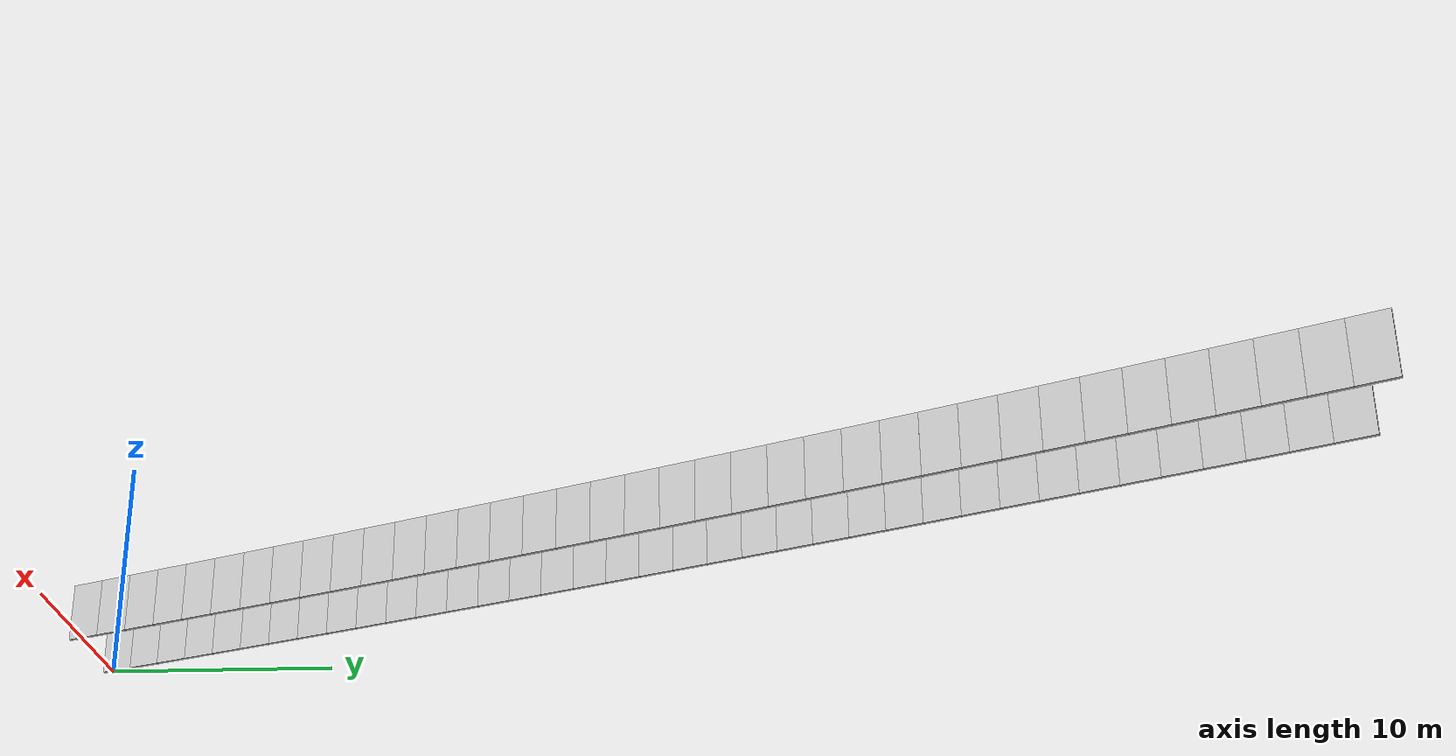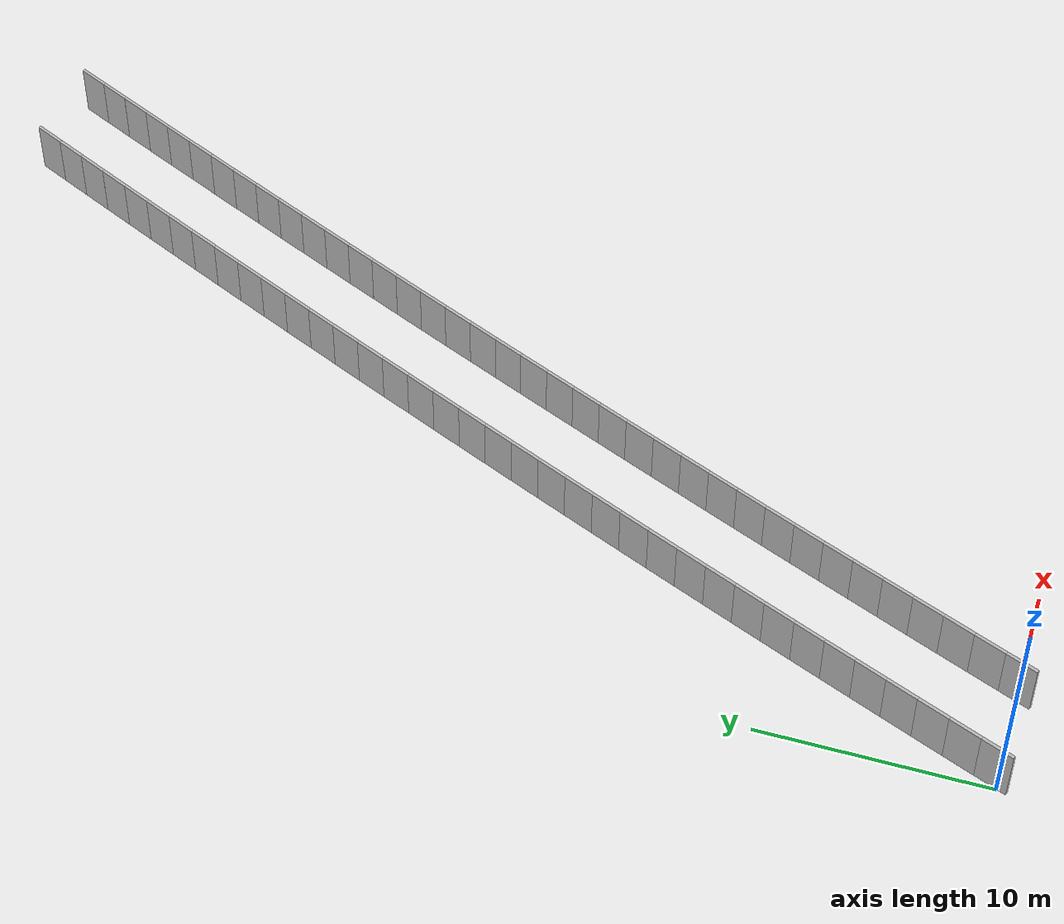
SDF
<?xml version="1.0" ?>
<sdf version="1.6">
  <model name="sps_0433">
    <pose frame="">0 0 0 0 -0 0</pose>
    <static>1</static>
    <self_collide>0</self_collide>
    <allow_auto_disable>0</allow_auto_disable>
    <link name="Wall4927">
      <kinematic>0</kinematic>
      <gravity>1</gravity>
      <self_collide>0</self_collide>
      <collision name="collision">
        <geometry>
          <box>
            <size>1.49666 0.15 2.5</size>
          </box>
        </geometry>
        <pose frame="">0 0 0 0 -0 0</pose>
      </collision>
      <visual name="visual">
        <geometry>
          <box>
            <size>1.49666 0.15 2.5</size>
          </box>
        </geometry>
        <pose frame="">0 0 0 0 -0 0</pose>
        <cast_shadows>1</cast_shadows>
        <transparency>0.0</transparency>
      </visual>
      <pose frame="">26.4168 49.3511 1.25 0 0 -2.01591</pose>
    </link>
    <link name="Wall4928">
      <kinematic>0</kinematic>
      <gravity>1</gravity>
      <self_collide>0</self_collide>
      <collision name="collision">
        <geometry>
          <box>
            <size>1.4965 0.15 2.5</size>
          </box>
        </geometry>
        <pose frame="">0 0 0 0 -0 0</pose>
      </collision>
      <visual name="visual">
        <geometry>
          <box>
            <size>1.4965 0.15 2.5</size>
          </box>
        </geometry>
        <pose frame="">0 0 0 0 -0 0</pose>
        <cast_shadows>1</cast_shadows>
        <transparency>0.0</transparency>
      </visual>
      <pose frame="">25.7736 47.9998 1.25 0 0 -2.01416</pose>
    </link>
    <link name="Wall4929">
      <kinematic>0</kinematic>
      <gravity>1</gravity>
      <self_collide>0</self_collide>
      <collision name="collision">
        <geometry>
          <box>
            <size>1.49654 0.15 2.5</size>
          </box>
        </geometry>
        <pose frame="">0 0 0 0 -0 0</pose>
      </collision>
      <visual name="visual">
        <geometry>
          <box>
            <size>1.49654 0.15 2.5</size>
          </box>
        </geometry>
        <pose frame="">0 0 0 0 -0 0</pose>
        <cast_shadows>1</cast_shadows>
        <transparency>0.0</transparency>
      </visual>
      <pose frame="">25.1327 46.6475 1.25 0 0 -2.0127</pose>
    </link>
    <link name="Wall4930">
      <kinematic>0</kinematic>
      <gravity>1</gravity>
      <self_collide>0</self_collide>
      <collision name="collision">
        <geometry>
          <box>
            <size>1.49654 0.15 2.5</size>
          </box>
        </geometry>
        <pose frame="">0 0 0 0 -0 0</pose>
      </collision>
      <visual name="visual">
        <geometry>
          <box>
            <size>1.49654 0.15 2.5</size>
          </box>
        </geometry>
        <pose frame="">0 0 0 0 -0 0</pose>
        <cast_shadows>1</cast_shadows>
        <transparency>0.0</transparency>
      </visual>
      <pose frame="">24.4937 45.2942 1.25 0 0 -2.01108</pose>
    </link>
    <link name="Wall4931">
      <kinematic>0</kinematic>
      <gravity>1</gravity>
      <self_collide>0</self_collide>
      <collision name="collision">
        <geometry>
          <box>
            <size>1.49647 0.15 2.5</size>
          </box>
        </geometry>
        <pose frame="">0 0 0 0 -0 0</pose>
      </collision>
      <visual name="visual">
        <geometry>
          <box>
            <size>1.49647 0.15 2.5</size>
          </box>
        </geometry>
        <pose frame="">0 0 0 0 -0 0</pose>
        <cast_shadows>1</cast_shadows>
        <transparency>0.0</transparency>
      </visual>
      <pose frame="">23.857 43.9399 1.25 0 0 -2.00943</pose>
    </link>
    <link name="Wall4932">
      <kinematic>0</kinematic>
      <gravity>1</gravity>
      <self_collide>0</self_collide>
      <collision name="collision">
        <geometry>
          <box>
            <size>1.49652 0.15 2.5</size>
          </box>
        </geometry>
        <pose frame="">0 0 0 0 -0 0</pose>
      </collision>
      <visual name="visual">
        <geometry>
          <box>
            <size>1.49652 0.15 2.5</size>
          </box>
        </geometry>
        <pose frame="">0 0 0 0 -0 0</pose>
        <cast_shadows>1</cast_shadows>
        <transparency>0.0</transparency>
      </visual>
      <pose frame="">23.2225 42.5846 1.25 0 0 -2.00798</pose>
    </link>
    <link name="Wall4933">
      <kinematic>0</kinematic>
      <gravity>1</gravity>
      <self_collide>0</self_collide>
      <collision name="collision">
        <geometry>
          <box>
            <size>1.49653 0.15 2.5</size>
          </box>
        </geometry>
        <pose frame="">0 0 0 0 -0 0</pose>
      </collision>
      <visual name="visual">
        <geometry>
          <box>
            <size>1.49653 0.15 2.5</size>
          </box>
        </geometry>
        <pose frame="">0 0 0 0 -0 0</pose>
        <cast_shadows>1</cast_shadows>
        <transparency>0.0</transparency>
      </visual>
      <pose frame="">22.59 41.2283 1.25 0 0 -2.00635</pose>
    </link>
    <link name="Wall4934">
      <kinematic>0</kinematic>
      <gravity>1</gravity>
      <self_collide>0</self_collide>
      <collision name="collision">
        <geometry>
          <box>
            <size>1.49649 0.15 2.5</size>
          </box>
        </geometry>
        <pose frame="">0 0 0 0 -0 0</pose>
      </collision>
      <visual name="visual">
        <geometry>
          <box>
            <size>1.49649 0.15 2.5</size>
          </box>
        </geometry>
        <pose frame="">0 0 0 0 -0 0</pose>
        <cast_shadows>1</cast_shadows>
        <transparency>0.0</transparency>
      </visual>
      <pose frame="">21.9596 39.871 1.25 0 0 -2.00475</pose>
    </link>
    <link name="Wall4935">
      <kinematic>0</kinematic>
      <gravity>1</gravity>
      <self_collide>0</self_collide>
      <collision name="collision">
        <geometry>
          <box>
            <size>1.49651 0.15 2.5</size>
          </box>
        </geometry>
        <pose frame="">0 0 0 0 -0 0</pose>
      </collision>
      <visual name="visual">
        <geometry>
          <box>
            <size>1.49651 0.15 2.5</size>
          </box>
        </geometry>
        <pose frame="">0 0 0 0 -0 0</pose>
        <cast_shadows>1</cast_shadows>
        <transparency>0.0</transparency>
      </visual>
      <pose frame="">21.3315 38.5127 1.25 0 0 -2.00312</pose>
    </link>
    <link name="Wall4936">
      <kinematic>0</kinematic>
      <gravity>1</gravity>
      <self_collide>0</self_collide>
      <collision name="collision">
        <geometry>
          <box>
            <size>1.49656 0.15 2.5</size>
          </box>
        </geometry>
        <pose frame="">0 0 0 0 -0 0</pose>
      </collision>
      <visual name="visual">
        <geometry>
          <box>
            <size>1.49656 0.15 2.5</size>
          </box>
        </geometry>
        <pose frame="">0 0 0 0 -0 0</pose>
        <cast_shadows>1</cast_shadows>
        <transparency>0.0</transparency>
      </visual>
      <pose frame="">20.7055 37.1534 1.25 0 0 -2.00163</pose>
    </link>
    <link name="Wall4937">
      <kinematic>0</kinematic>
      <gravity>1</gravity>
      <self_collide>0</self_collide>
      <collision name="collision">
        <geometry>
          <box>
            <size>1.49643 0.15 2.5</size>
          </box>
        </geometry>
        <pose frame="">0 0 0 0 -0 0</pose>
      </collision>
      <visual name="visual">
        <geometry>
          <box>
            <size>1.49643 0.15 2.5</size>
          </box>
        </geometry>
        <pose frame="">0 0 0 0 -0 0</pose>
        <cast_shadows>1</cast_shadows>
        <transparency>0.0</transparency>
      </visual>
      <pose frame="">20.0817 35.7931 1.25 0 0 -1.99987</pose>
    </link>
    <link name="Wall4938">
      <kinematic>0</kinematic>
      <gravity>1</gravity>
      <self_collide>0</self_collide>
      <collision name="collision">
        <geometry>
          <box>
            <size>1.49608 0.15 2.5</size>
          </box>
        </geometry>
        <pose frame="">0 0 0 0 -0 0</pose>
      </collision>
      <visual name="visual">
        <geometry>
          <box>
            <size>1.49608 0.15 2.5</size>
          </box>
        </geometry>
        <pose frame="">0 0 0 0 -0 0</pose>
        <cast_shadows>1</cast_shadows>
        <transparency>0.0</transparency>
      </visual>
      <pose frame="">19.4601 34.4321 1.25 0 0 -1.99868</pose>
    </link>
    <link name="Wall4939">
      <kinematic>0</kinematic>
      <gravity>1</gravity>
      <self_collide>0</self_collide>
      <collision name="collision">
        <geometry>
          <box>
            <size>1.49654 0.15 2.5</size>
          </box>
        </geometry>
        <pose frame="">0 0 0 0 -0 0</pose>
      </collision>
      <visual name="visual">
        <geometry>
          <box>
            <size>1.49654 0.15 2.5</size>
          </box>
        </geometry>
        <pose frame="">0 0 0 0 -0 0</pose>
        <cast_shadows>1</cast_shadows>
        <transparency>0.0</transparency>
      </visual>
      <pose frame="">18.8405 33.0701 1.25 0 0 -1.99679</pose>
    </link>
    <link name="Wall4940">
      <kinematic>0</kinematic>
      <gravity>1</gravity>
      <self_collide>0</self_collide>
      <collision name="collision">
        <geometry>
          <box>
            <size>1.4966 0.15 2.5</size>
          </box>
        </geometry>
        <pose frame="">0 0 0 0 -0 0</pose>
      </collision>
      <visual name="visual">
        <geometry>
          <box>
            <size>1.4966 0.15 2.5</size>
          </box>
        </geometry>
        <pose frame="">0 0 0 0 -0 0</pose>
        <cast_shadows>1</cast_shadows>
        <transparency>0.0</transparency>
      </visual>
      <pose frame="">18.2231 31.7068 1.25 0 0 -1.99529</pose>
    </link>
    <link name="Wall4941">
      <kinematic>0</kinematic>
      <gravity>1</gravity>
      <self_collide>0</self_collide>
      <collision name="collision">
        <geometry>
          <box>
            <size>1.49647 0.15 2.5</size>
          </box>
        </geometry>
        <pose frame="">0 0 0 0 -0 0</pose>
      </collision>
      <visual name="visual">
        <geometry>
          <box>
            <size>1.49647 0.15 2.5</size>
          </box>
        </geometry>
        <pose frame="">0 0 0 0 -0 0</pose>
        <cast_shadows>1</cast_shadows>
        <transparency>0.0</transparency>
      </visual>
      <pose frame="">17.6078 30.3426 1.25 0 0 -1.99372</pose>
    </link>
    <link name="Wall4942">
      <kinematic>0</kinematic>
      <gravity>1</gravity>
      <self_collide>0</self_collide>
      <collision name="collision">
        <geometry>
          <box>
            <size>1.49639 0.15 2.5</size>
          </box>
        </geometry>
        <pose frame="">0 0 0 0 -0 0</pose>
      </collision>
      <visual name="visual">
        <geometry>
          <box>
            <size>1.49639 0.15 2.5</size>
          </box>
        </geometry>
        <pose frame="">0 0 0 0 -0 0</pose>
        <cast_shadows>1</cast_shadows>
        <transparency>0.0</transparency>
      </visual>
      <pose frame="">16.9948 28.9775 1.25 0 0 -1.992</pose>
    </link>
    <link name="Wall4943">
      <kinematic>0</kinematic>
      <gravity>1</gravity>
      <self_collide>0</self_collide>
      <collision name="collision">
        <geometry>
          <box>
            <size>1.49668 0.15 2.5</size>
          </box>
        </geometry>
        <pose frame="">0 0 0 0 -0 0</pose>
      </collision>
      <visual name="visual">
        <geometry>
          <box>
            <size>1.49668 0.15 2.5</size>
          </box>
        </geometry>
        <pose frame="">0 0 0 0 -0 0</pose>
        <cast_shadows>1</cast_shadows>
        <transparency>0.0</transparency>
      </visual>
      <pose frame="">16.384 27.6113 1.25 0 0 -1.99044</pose>
    </link>
    <link name="Wall4944">
      <kinematic>0</kinematic>
      <gravity>1</gravity>
      <self_collide>0</self_collide>
      <collision name="collision">
        <geometry>
          <box>
            <size>1.49629 0.15 2.5</size>
          </box>
        </geometry>
        <pose frame="">0 0 0 0 -0 0</pose>
      </collision>
      <visual name="visual">
        <geometry>
          <box>
            <size>1.49629 0.15 2.5</size>
          </box>
        </geometry>
        <pose frame="">0 0 0 0 -0 0</pose>
        <cast_shadows>1</cast_shadows>
        <transparency>0.0</transparency>
      </visual>
      <pose frame="">15.7753 26.2442 1.25 0 0 -1.98895</pose>
    </link>
    <link name="Wall4945">
      <kinematic>0</kinematic>
      <gravity>1</gravity>
      <self_collide>0</self_collide>
      <collision name="collision">
        <geometry>
          <box>
            <size>1.49674 0.15 2.5</size>
          </box>
        </geometry>
        <pose frame="">0 0 0 0 -0 0</pose>
      </collision>
      <visual name="visual">
        <geometry>
          <box>
            <size>1.49674 0.15 2.5</size>
          </box>
        </geometry>
        <pose frame="">0 0 0 0 -0 0</pose>
        <cast_shadows>1</cast_shadows>
        <transparency>0.0</transparency>
      </visual>
      <pose frame="">15.1688 24.8761 1.25 0 0 -1.98721</pose>
    </link>
    <link name="Wall4946">
      <kinematic>0</kinematic>
      <gravity>1</gravity>
      <self_collide>0</self_collide>
      <collision name="collision">
        <geometry>
          <box>
            <size>1.4966 0.15 2.5</size>
          </box>
        </geometry>
        <pose frame="">0 0 0 0 -0 0</pose>
      </collision>
      <visual name="visual">
        <geometry>
          <box>
            <size>1.4966 0.15 2.5</size>
          </box>
        </geometry>
        <pose frame="">0 0 0 0 -0 0</pose>
        <cast_shadows>1</cast_shadows>
        <transparency>0.0</transparency>
      </visual>
      <pose frame="">14.5644 23.5069 1.25 0 0 -1.98578</pose>
    </link>
    <link name="Wall4947">
      <kinematic>0</kinematic>
      <gravity>1</gravity>
      <self_collide>0</self_collide>
      <collision name="collision">
        <geometry>
          <box>
            <size>1.49649 0.15 2.5</size>
          </box>
        </geometry>
        <pose frame="">0 0 0 0 -0 0</pose>
      </collision>
      <visual name="visual">
        <geometry>
          <box>
            <size>1.49649 0.15 2.5</size>
          </box>
        </geometry>
        <pose frame="">0 0 0 0 -0 0</pose>
        <cast_shadows>1</cast_shadows>
        <transparency>0.0</transparency>
      </visual>
      <pose frame="">13.9621 22.1369 1.25 0 0 -1.98421</pose>
    </link>
    <link name="Wall4948">
      <kinematic>0</kinematic>
      <gravity>1</gravity>
      <self_collide>0</self_collide>
      <collision name="collision">
        <geometry>
          <box>
            <size>1.49643 0.15 2.5</size>
          </box>
        </geometry>
        <pose frame="">0 0 0 0 -0 0</pose>
      </collision>
      <visual name="visual">
        <geometry>
          <box>
            <size>1.49643 0.15 2.5</size>
          </box>
        </geometry>
        <pose frame="">0 0 0 0 -0 0</pose>
        <cast_shadows>1</cast_shadows>
        <transparency>0.0</transparency>
      </visual>
      <pose frame="">13.3621 20.766 1.25 0 0 -1.98249</pose>
    </link>
    <link name="Wall4949">
      <kinematic>0</kinematic>
      <gravity>1</gravity>
      <self_collide>0</self_collide>
      <collision name="collision">
        <geometry>
          <box>
            <size>1.49652 0.15 2.5</size>
          </box>
        </geometry>
        <pose frame="">0 0 0 0 -0 0</pose>
      </collision>
      <visual name="visual">
        <geometry>
          <box>
            <size>1.49652 0.15 2.5</size>
          </box>
        </geometry>
        <pose frame="">0 0 0 0 -0 0</pose>
        <cast_shadows>1</cast_shadows>
        <transparency>0.0</transparency>
      </visual>
      <pose frame="">12.7642 19.3941 1.25 0 0 -1.981</pose>
    </link>
    <link name="Wall4950">
      <kinematic>0</kinematic>
      <gravity>1</gravity>
      <self_collide>0</self_collide>
      <collision name="collision">
        <geometry>
          <box>
            <size>1.49643 0.15 2.5</size>
          </box>
        </geometry>
        <pose frame="">0 0 0 0 -0 0</pose>
      </collision>
      <visual name="visual">
        <geometry>
          <box>
            <size>1.49643 0.15 2.5</size>
          </box>
        </geometry>
        <pose frame="">0 0 0 0 -0 0</pose>
        <cast_shadows>1</cast_shadows>
        <transparency>0.0</transparency>
      </visual>
      <pose frame="">12.1685 18.0213 1.25 0 0 -1.97942</pose>
    </link>
    <link name="Wall4951">
      <kinematic>0</kinematic>
      <gravity>1</gravity>
      <self_collide>0</self_collide>
      <collision name="collision">
        <geometry>
          <box>
            <size>1.49663 0.15 2.5</size>
          </box>
        </geometry>
        <pose frame="">0 0 0 0 -0 0</pose>
      </collision>
      <visual name="visual">
        <geometry>
          <box>
            <size>1.49663 0.15 2.5</size>
          </box>
        </geometry>
        <pose frame="">0 0 0 0 -0 0</pose>
        <cast_shadows>1</cast_shadows>
        <transparency>0.0</transparency>
      </visual>
      <pose frame="">11.575 16.6475 1.25 0 0 -1.97777</pose>
    </link>
    <link name="Wall4952">
      <kinematic>0</kinematic>
      <gravity>1</gravity>
      <self_collide>0</self_collide>
      <collision name="collision">
        <geometry>
          <box>
            <size>1.49656 0.15 2.5</size>
          </box>
        </geometry>
        <pose frame="">0 0 0 0 -0 0</pose>
      </collision>
      <visual name="visual">
        <geometry>
          <box>
            <size>1.49656 0.15 2.5</size>
          </box>
        </geometry>
        <pose frame="">0 0 0 0 -0 0</pose>
        <cast_shadows>1</cast_shadows>
        <transparency>0.0</transparency>
      </visual>
      <pose frame="">10.9836 15.2727 1.25 0 0 -1.97632</pose>
    </link>
    <link name="Wall4953">
      <kinematic>0</kinematic>
      <gravity>1</gravity>
      <self_collide>0</self_collide>
      <collision name="collision">
        <geometry>
          <box>
            <size>1.49655 0.15 2.5</size>
          </box>
        </geometry>
        <pose frame="">0 0 0 0 -0 0</pose>
      </collision>
      <visual name="visual">
        <geometry>
          <box>
            <size>1.49655 0.15 2.5</size>
          </box>
        </geometry>
        <pose frame="">0 0 0 0 -0 0</pose>
        <cast_shadows>1</cast_shadows>
        <transparency>0.0</transparency>
      </visual>
      <pose frame="">10.3945 13.897 1.25 0 0 -1.97455</pose>
    </link>
    <link name="Wall4954">
      <kinematic>0</kinematic>
      <gravity>1</gravity>
      <self_collide>0</self_collide>
      <collision name="collision">
        <geometry>
          <box>
            <size>1.49654 0.15 2.5</size>
          </box>
        </geometry>
        <pose frame="">0 0 0 0 -0 0</pose>
      </collision>
      <visual name="visual">
        <geometry>
          <box>
            <size>1.49654 0.15 2.5</size>
          </box>
        </geometry>
        <pose frame="">0 0 0 0 -0 0</pose>
        <cast_shadows>1</cast_shadows>
        <transparency>0.0</transparency>
      </visual>
      <pose frame="">9.80746 12.5204 1.25 0 0 -1.97318</pose>
    </link>
    <link name="Wall4955">
      <kinematic>0</kinematic>
      <gravity>1</gravity>
      <self_collide>0</self_collide>
      <collision name="collision">
        <geometry>
          <box>
            <size>1.49646 0.15 2.5</size>
          </box>
        </geometry>
        <pose frame="">0 0 0 0 -0 0</pose>
      </collision>
      <visual name="visual">
        <geometry>
          <box>
            <size>1.49646 0.15 2.5</size>
          </box>
        </geometry>
        <pose frame="">0 0 0 0 -0 0</pose>
        <cast_shadows>1</cast_shadows>
        <transparency>0.0</transparency>
      </visual>
      <pose frame="">9.22265 11.1429 1.25 0 0 -1.97138</pose>
    </link>
    <link name="Wall4956">
      <kinematic>0</kinematic>
      <gravity>1</gravity>
      <self_collide>0</self_collide>
      <collision name="collision">
        <geometry>
          <box>
            <size>1.49643 0.15 2.5</size>
          </box>
        </geometry>
        <pose frame="">0 0 0 0 -0 0</pose>
      </collision>
      <visual name="visual">
        <geometry>
          <box>
            <size>1.49643 0.15 2.5</size>
          </box>
        </geometry>
        <pose frame="">0 0 0 0 -0 0</pose>
        <cast_shadows>1</cast_shadows>
        <transparency>0.0</transparency>
      </visual>
      <pose frame="">8.64007 9.76448 1.25 0 0 -1.96997</pose>
    </link>
    <link name="Wall4957">
      <kinematic>0</kinematic>
      <gravity>1</gravity>
      <self_collide>0</self_collide>
      <collision name="collision">
        <geometry>
          <box>
            <size>1.49663 0.15 2.5</size>
          </box>
        </geometry>
        <pose frame="">0 0 0 0 -0 0</pose>
      </collision>
      <visual name="visual">
        <geometry>
          <box>
            <size>1.49663 0.15 2.5</size>
          </box>
        </geometry>
        <pose frame="">0 0 0 0 -0 0</pose>
        <cast_shadows>1</cast_shadows>
        <transparency>0.0</transparency>
      </visual>
      <pose frame="">8.05965 8.38509 1.25 0 0 -1.96819</pose>
    </link>
    <link name="Wall4958">
      <kinematic>0</kinematic>
      <gravity>1</gravity>
      <self_collide>0</self_collide>
      <collision name="collision">
        <geometry>
          <box>
            <size>1.49642 0.15 2.5</size>
          </box>
        </geometry>
        <pose frame="">0 0 0 0 -0 0</pose>
      </collision>
      <visual name="visual">
        <geometry>
          <box>
            <size>1.49642 0.15 2.5</size>
          </box>
        </geometry>
        <pose frame="">0 0 0 0 -0 0</pose>
        <cast_shadows>1</cast_shadows>
        <transparency>0.0</transparency>
      </visual>
      <pose frame="">7.48144 7.00477 1.25 0 0 -1.96679</pose>
    </link>
    <link name="Wall4959">
      <kinematic>0</kinematic>
      <gravity>1</gravity>
      <self_collide>0</self_collide>
      <collision name="collision">
        <geometry>
          <box>
            <size>1.49655 0.15 2.5</size>
          </box>
        </geometry>
        <pose frame="">0 0 0 0 -0 0</pose>
      </collision>
      <visual name="visual">
        <geometry>
          <box>
            <size>1.49655 0.15 2.5</size>
          </box>
        </geometry>
        <pose frame="">0 0 0 0 -0 0</pose>
        <cast_shadows>1</cast_shadows>
        <transparency>0.0</transparency>
      </visual>
      <pose frame="">6.90545 5.62358 1.25 0 0 -1.96499</pose>
    </link>
    <link name="Wall4960">
      <kinematic>0</kinematic>
      <gravity>1</gravity>
      <self_collide>0</self_collide>
      <collision name="collision">
        <geometry>
          <box>
            <size>1.49659 0.15 2.5</size>
          </box>
        </geometry>
        <pose frame="">0 0 0 0 -0 0</pose>
      </collision>
      <visual name="visual">
        <geometry>
          <box>
            <size>1.49659 0.15 2.5</size>
          </box>
        </geometry>
        <pose frame="">0 0 0 0 -0 0</pose>
        <cast_shadows>1</cast_shadows>
        <transparency>0.0</transparency>
      </visual>
      <pose frame="">6.33166 4.24138 1.25 0 0 -1.96356</pose>
    </link>
    <link name="Wall4961">
      <kinematic>0</kinematic>
      <gravity>1</gravity>
      <self_collide>0</self_collide>
      <collision name="collision">
        <geometry>
          <box>
            <size>1.49643 0.15 2.5</size>
          </box>
        </geometry>
        <pose frame="">0 0 0 0 -0 0</pose>
      </collision>
      <visual name="visual">
        <geometry>
          <box>
            <size>1.49643 0.15 2.5</size>
          </box>
        </geometry>
        <pose frame="">0 0 0 0 -0 0</pose>
        <cast_shadows>1</cast_shadows>
        <transparency>0.0</transparency>
      </visual>
      <pose frame="">5.75994 2.85838 1.25 0 0 -1.96202</pose>
    </link>
    <link name="Wall4962">
      <kinematic>0</kinematic>
      <gravity>1</gravity>
      <self_collide>0</self_collide>
      <collision name="collision">
        <geometry>
          <box>
            <size>1.49606 0.15 2.5</size>
          </box>
        </geometry>
        <pose frame="">0 0 0 0 -0 0</pose>
      </collision>
      <visual name="visual">
        <geometry>
          <box>
            <size>1.49606 0.15 2.5</size>
          </box>
        </geometry>
        <pose frame="">0 0 0 0 -0 0</pose>
        <cast_shadows>1</cast_shadows>
        <transparency>0.0</transparency>
      </visual>
      <pose frame="">5.19033 1.47481 1.25 0 0 -1.96067</pose>
    </link>
    <link name="Wall4963">
      <kinematic>0</kinematic>
      <gravity>1</gravity>
      <self_collide>0</self_collide>
      <collision name="collision">
        <geometry>
          <box>
            <size>1.49665 0.15 2.5</size>
          </box>
        </geometry>
        <pose frame="">0 0 0 0 -0 0</pose>
      </collision>
      <visual name="visual">
        <geometry>
          <box>
            <size>1.49665 0.15 2.5</size>
          </box>
        </geometry>
        <pose frame="">0 0 0 0 -0 0</pose>
        <cast_shadows>1</cast_shadows>
        <transparency>0.0</transparency>
      </visual>
      <pose frame="">4.62295 0.0901937 1.25 0 0 -1.95874</pose>
    </link>
    <link name="Wall6724">
      <kinematic>0</kinematic>
      <gravity>1</gravity>
      <self_collide>0</self_collide>
      <collision name="collision">
        <geometry>
          <box>
            <size>1.50318 0.15 2.5</size>
          </box>
        </geometry>
        <pose frame="">0 0 0 0 -0 0</pose>
      </collision>
      <visual name="visual">
        <geometry>
          <box>
            <size>1.50318 0.15 2.5</size>
          </box>
        </geometry>
        <pose frame="">0 0 0 0 -0 0</pose>
        <cast_shadows>1</cast_shadows>
        <transparency>0.0</transparency>
      </visual>
      <pose frame="">22.035 49.7762 1.25 0 0 -2.01425</pose>
    </link>
    <link name="Wall6725">
      <kinematic>0</kinematic>
      <gravity>1</gravity>
      <self_collide>0</self_collide>
      <collision name="collision">
        <geometry>
          <box>
            <size>1.50313 0.15 2.5</size>
          </box>
        </geometry>
        <pose frame="">0 0 0 0 -0 0</pose>
      </collision>
      <visual name="visual">
        <geometry>
          <box>
            <size>1.50313 0.15 2.5</size>
          </box>
        </geometry>
        <pose frame="">0 0 0 0 -0 0</pose>
        <cast_shadows>1</cast_shadows>
        <transparency>0.0</transparency>
      </visual>
      <pose frame="">21.3912 48.4179 1.25 0 0 -2.01256</pose>
    </link>
    <link name="Wall6726">
      <kinematic>0</kinematic>
      <gravity>1</gravity>
      <self_collide>0</self_collide>
      <collision name="collision">
        <geometry>
          <box>
            <size>1.50301 0.15 2.5</size>
          </box>
        </geometry>
        <pose frame="">0 0 0 0 -0 0</pose>
      </collision>
      <visual name="visual">
        <geometry>
          <box>
            <size>1.50301 0.15 2.5</size>
          </box>
        </geometry>
        <pose frame="">0 0 0 0 -0 0</pose>
        <cast_shadows>1</cast_shadows>
        <transparency>0.0</transparency>
      </visual>
      <pose frame="">20.7494 47.0587 1.25 0 0 -2.01125</pose>
    </link>
    <link name="Wall6727">
      <kinematic>0</kinematic>
      <gravity>1</gravity>
      <self_collide>0</self_collide>
      <collision name="collision">
        <geometry>
          <box>
            <size>1.50313 0.15 2.5</size>
          </box>
        </geometry>
        <pose frame="">0 0 0 0 -0 0</pose>
      </collision>
      <visual name="visual">
        <geometry>
          <box>
            <size>1.50313 0.15 2.5</size>
          </box>
        </geometry>
        <pose frame="">0 0 0 0 -0 0</pose>
        <cast_shadows>1</cast_shadows>
        <transparency>0.0</transparency>
      </visual>
      <pose frame="">20.1099 45.6985 1.25 0 0 -2.00942</pose>
    </link>
    <link name="Wall6728">
      <kinematic>0</kinematic>
      <gravity>1</gravity>
      <self_collide>0</self_collide>
      <collision name="collision">
        <geometry>
          <box>
            <size>1.50311 0.15 2.5</size>
          </box>
        </geometry>
        <pose frame="">0 0 0 0 -0 0</pose>
      </collision>
      <visual name="visual">
        <geometry>
          <box>
            <size>1.50311 0.15 2.5</size>
          </box>
        </geometry>
        <pose frame="">0 0 0 0 -0 0</pose>
        <cast_shadows>1</cast_shadows>
        <transparency>0.0</transparency>
      </visual>
      <pose frame="">19.4726 44.3372 1.25 0 0 -2.00786</pose>
    </link>
    <link name="Wall6729">
      <kinematic>0</kinematic>
      <gravity>1</gravity>
      <self_collide>0</self_collide>
      <collision name="collision">
        <geometry>
          <box>
            <size>1.50312 0.15 2.5</size>
          </box>
        </geometry>
        <pose frame="">0 0 0 0 -0 0</pose>
      </collision>
      <visual name="visual">
        <geometry>
          <box>
            <size>1.50312 0.15 2.5</size>
          </box>
        </geometry>
        <pose frame="">0 0 0 0 -0 0</pose>
        <cast_shadows>1</cast_shadows>
        <transparency>0.0</transparency>
      </visual>
      <pose frame="">18.8374 42.9749 1.25 0 0 -2.00633</pose>
    </link>
    <link name="Wall6730">
      <kinematic>0</kinematic>
      <gravity>1</gravity>
      <self_collide>0</self_collide>
      <collision name="collision">
        <geometry>
          <box>
            <size>1.50294 0.15 2.5</size>
          </box>
        </geometry>
        <pose frame="">0 0 0 0 -0 0</pose>
      </collision>
      <visual name="visual">
        <geometry>
          <box>
            <size>1.50294 0.15 2.5</size>
          </box>
        </geometry>
        <pose frame="">0 0 0 0 -0 0</pose>
        <cast_shadows>1</cast_shadows>
        <transparency>0.0</transparency>
      </visual>
      <pose frame="">18.2043 41.6117 1.25 0 0 -2.00482</pose>
    </link>
    <link name="Wall6731">
      <kinematic>0</kinematic>
      <gravity>1</gravity>
      <self_collide>0</self_collide>
      <collision name="collision">
        <geometry>
          <box>
            <size>1.50312 0.15 2.5</size>
          </box>
        </geometry>
        <pose frame="">0 0 0 0 -0 0</pose>
      </collision>
      <visual name="visual">
        <geometry>
          <box>
            <size>1.50312 0.15 2.5</size>
          </box>
        </geometry>
        <pose frame="">0 0 0 0 -0 0</pose>
        <cast_shadows>1</cast_shadows>
        <transparency>0.0</transparency>
      </visual>
      <pose frame="">17.5734 40.2475 1.25 0 0 -2.00315</pose>
    </link>
    <link name="Wall6732">
      <kinematic>0</kinematic>
      <gravity>1</gravity>
      <self_collide>0</self_collide>
      <collision name="collision">
        <geometry>
          <box>
            <size>1.50317 0.15 2.5</size>
          </box>
        </geometry>
        <pose frame="">0 0 0 0 -0 0</pose>
      </collision>
      <visual name="visual">
        <geometry>
          <box>
            <size>1.50317 0.15 2.5</size>
          </box>
        </geometry>
        <pose frame="">0 0 0 0 -0 0</pose>
        <cast_shadows>1</cast_shadows>
        <transparency>0.0</transparency>
      </visual>
      <pose frame="">16.9445 38.8822 1.25 0 0 -2.00166</pose>
    </link>
    <link name="Wall6733">
      <kinematic>0</kinematic>
      <gravity>1</gravity>
      <self_collide>0</self_collide>
      <collision name="collision">
        <geometry>
          <box>
            <size>1.50309 0.15 2.5</size>
          </box>
        </geometry>
        <pose frame="">0 0 0 0 -0 0</pose>
      </collision>
      <visual name="visual">
        <geometry>
          <box>
            <size>1.50309 0.15 2.5</size>
          </box>
        </geometry>
        <pose frame="">0 0 0 0 -0 0</pose>
        <cast_shadows>1</cast_shadows>
        <transparency>0.0</transparency>
      </visual>
      <pose frame="">16.318 37.5159 1.25 0 0 -1.9999</pose>
    </link>
    <link name="Wall6734">
      <kinematic>0</kinematic>
      <gravity>1</gravity>
      <self_collide>0</self_collide>
      <collision name="collision">
        <geometry>
          <box>
            <size>1.50287 0.15 2.5</size>
          </box>
        </geometry>
        <pose frame="">0 0 0 0 -0 0</pose>
      </collision>
      <visual name="visual">
        <geometry>
          <box>
            <size>1.50287 0.15 2.5</size>
          </box>
        </geometry>
        <pose frame="">0 0 0 0 -0 0</pose>
        <cast_shadows>1</cast_shadows>
        <transparency>0.0</transparency>
      </visual>
      <pose frame="">15.6937 36.1487 1.25 0 0 -1.9984</pose>
    </link>
    <link name="Wall6735">
      <kinematic>0</kinematic>
      <gravity>1</gravity>
      <self_collide>0</self_collide>
      <collision name="collision">
        <geometry>
          <box>
            <size>1.50272 0.15 2.5</size>
          </box>
        </geometry>
        <pose frame="">0 0 0 0 -0 0</pose>
      </collision>
      <visual name="visual">
        <geometry>
          <box>
            <size>1.50272 0.15 2.5</size>
          </box>
        </geometry>
        <pose frame="">0 0 0 0 -0 0</pose>
        <cast_shadows>1</cast_shadows>
        <transparency>0.0</transparency>
      </visual>
      <pose frame="">15.0713 34.7808 1.25 0 0 -1.99711</pose>
    </link>
    <link name="Wall6736">
      <kinematic>0</kinematic>
      <gravity>1</gravity>
      <self_collide>0</self_collide>
      <collision name="collision">
        <geometry>
          <box>
            <size>1.50299 0.15 2.5</size>
          </box>
        </geometry>
        <pose frame="">0 0 0 0 -0 0</pose>
      </collision>
      <visual name="visual">
        <geometry>
          <box>
            <size>1.50299 0.15 2.5</size>
          </box>
        </geometry>
        <pose frame="">0 0 0 0 -0 0</pose>
        <cast_shadows>1</cast_shadows>
        <transparency>0.0</transparency>
      </visual>
      <pose frame="">14.4512 33.4119 1.25 0 0 -1.99524</pose>
    </link>
    <link name="Wall6737">
      <kinematic>0</kinematic>
      <gravity>1</gravity>
      <self_collide>0</self_collide>
      <collision name="collision">
        <geometry>
          <box>
            <size>1.50317 0.15 2.5</size>
          </box>
        </geometry>
        <pose frame="">0 0 0 0 -0 0</pose>
      </collision>
      <visual name="visual">
        <geometry>
          <box>
            <size>1.50317 0.15 2.5</size>
          </box>
        </geometry>
        <pose frame="">0 0 0 0 -0 0</pose>
        <cast_shadows>1</cast_shadows>
        <transparency>0.0</transparency>
      </visual>
      <pose frame="">13.8333 32.0417 1.25 0 0 -1.99363</pose>
    </link>
    <link name="Wall6738">
      <kinematic>0</kinematic>
      <gravity>1</gravity>
      <self_collide>0</self_collide>
      <collision name="collision">
        <geometry>
          <box>
            <size>1.503 0.15 2.5</size>
          </box>
        </geometry>
        <pose frame="">0 0 0 0 -0 0</pose>
      </collision>
      <visual name="visual">
        <geometry>
          <box>
            <size>1.503 0.15 2.5</size>
          </box>
        </geometry>
        <pose frame="">0 0 0 0 -0 0</pose>
        <cast_shadows>1</cast_shadows>
        <transparency>0.0</transparency>
      </visual>
      <pose frame="">13.2176 30.6705 1.25 0 0 -1.99208</pose>
    </link>
    <link name="Wall6739">
      <kinematic>0</kinematic>
      <gravity>1</gravity>
      <self_collide>0</self_collide>
      <collision name="collision">
        <geometry>
          <box>
            <size>1.50302 0.15 2.5</size>
          </box>
        </geometry>
        <pose frame="">0 0 0 0 -0 0</pose>
      </collision>
      <visual name="visual">
        <geometry>
          <box>
            <size>1.50302 0.15 2.5</size>
          </box>
        </geometry>
        <pose frame="">0 0 0 0 -0 0</pose>
        <cast_shadows>1</cast_shadows>
        <transparency>0.0</transparency>
      </visual>
      <pose frame="">12.6041 29.2984 1.25 0 0 -1.99043</pose>
    </link>
    <link name="Wall6740">
      <kinematic>0</kinematic>
      <gravity>1</gravity>
      <self_collide>0</self_collide>
      <collision name="collision">
        <geometry>
          <box>
            <size>1.50312 0.15 2.5</size>
          </box>
        </geometry>
        <pose frame="">0 0 0 0 -0 0</pose>
      </collision>
      <visual name="visual">
        <geometry>
          <box>
            <size>1.50312 0.15 2.5</size>
          </box>
        </geometry>
        <pose frame="">0 0 0 0 -0 0</pose>
        <cast_shadows>1</cast_shadows>
        <transparency>0.0</transparency>
      </visual>
      <pose frame="">11.9927 27.9253 1.25 0 0 -1.98898</pose>
    </link>
    <link name="Wall6741">
      <kinematic>0</kinematic>
      <gravity>1</gravity>
      <self_collide>0</self_collide>
      <collision name="collision">
        <geometry>
          <box>
            <size>1.50322 0.15 2.5</size>
          </box>
        </geometry>
        <pose frame="">0 0 0 0 -0 0</pose>
      </collision>
      <visual name="visual">
        <geometry>
          <box>
            <size>1.50322 0.15 2.5</size>
          </box>
        </geometry>
        <pose frame="">0 0 0 0 -0 0</pose>
        <cast_shadows>1</cast_shadows>
        <transparency>0.0</transparency>
      </visual>
      <pose frame="">11.3834 26.5511 1.25 0 0 -1.98721</pose>
    </link>
    <link name="Wall6742">
      <kinematic>0</kinematic>
      <gravity>1</gravity>
      <self_collide>0</self_collide>
      <collision name="collision">
        <geometry>
          <box>
            <size>1.50299 0.15 2.5</size>
          </box>
        </geometry>
        <pose frame="">0 0 0 0 -0 0</pose>
      </collision>
      <visual name="visual">
        <geometry>
          <box>
            <size>1.50299 0.15 2.5</size>
          </box>
        </geometry>
        <pose frame="">0 0 0 0 -0 0</pose>
        <cast_shadows>1</cast_shadows>
        <transparency>0.0</transparency>
      </visual>
      <pose frame="">10.7765 25.176 1.25 0 0 -1.98577</pose>
    </link>
    <link name="Wall6743">
      <kinematic>0</kinematic>
      <gravity>1</gravity>
      <self_collide>0</self_collide>
      <collision name="collision">
        <geometry>
          <box>
            <size>1.50319 0.15 2.5</size>
          </box>
        </geometry>
        <pose frame="">0 0 0 0 -0 0</pose>
      </collision>
      <visual name="visual">
        <geometry>
          <box>
            <size>1.50319 0.15 2.5</size>
          </box>
        </geometry>
        <pose frame="">0 0 0 0 -0 0</pose>
        <cast_shadows>1</cast_shadows>
        <transparency>0.0</transparency>
      </visual>
      <pose frame="">10.1716 23.8 1.25 0 0 -1.98416</pose>
    </link>
    <link name="Wall6744">
      <kinematic>0</kinematic>
      <gravity>1</gravity>
      <self_collide>0</self_collide>
      <collision name="collision">
        <geometry>
          <box>
            <size>1.5031 0.15 2.5</size>
          </box>
        </geometry>
        <pose frame="">0 0 0 0 -0 0</pose>
      </collision>
      <visual name="visual">
        <geometry>
          <box>
            <size>1.5031 0.15 2.5</size>
          </box>
        </geometry>
        <pose frame="">0 0 0 0 -0 0</pose>
        <cast_shadows>1</cast_shadows>
        <transparency>0.0</transparency>
      </visual>
      <pose frame="">9.56884 22.423 1.25 0 0 -1.98259</pose>
    </link>
    <link name="Wall6745">
      <kinematic>0</kinematic>
      <gravity>1</gravity>
      <self_collide>0</self_collide>
      <collision name="collision">
        <geometry>
          <box>
            <size>1.50303 0.15 2.5</size>
          </box>
        </geometry>
        <pose frame="">0 0 0 0 -0 0</pose>
      </collision>
      <visual name="visual">
        <geometry>
          <box>
            <size>1.50303 0.15 2.5</size>
          </box>
        </geometry>
        <pose frame="">0 0 0 0 -0 0</pose>
        <cast_shadows>1</cast_shadows>
        <transparency>0.0</transparency>
      </visual>
      <pose frame="">8.96834 21.0451 1.25 0 0 -1.98097</pose>
    </link>
    <link name="Wall6746">
      <kinematic>0</kinematic>
      <gravity>1</gravity>
      <self_collide>0</self_collide>
      <collision name="collision">
        <geometry>
          <box>
            <size>1.50297 0.15 2.5</size>
          </box>
        </geometry>
        <pose frame="">0 0 0 0 -0 0</pose>
      </collision>
      <visual name="visual">
        <geometry>
          <box>
            <size>1.50297 0.15 2.5</size>
          </box>
        </geometry>
        <pose frame="">0 0 0 0 -0 0</pose>
        <cast_shadows>1</cast_shadows>
        <transparency>0.0</transparency>
      </visual>
      <pose frame="">8.37005 19.6663 1.25 0 0 -1.97944</pose>
    </link>
    <link name="Wall6747">
      <kinematic>0</kinematic>
      <gravity>1</gravity>
      <self_collide>0</self_collide>
      <collision name="collision">
        <geometry>
          <box>
            <size>1.50319 0.15 2.5</size>
          </box>
        </geometry>
        <pose frame="">0 0 0 0 -0 0</pose>
      </collision>
      <visual name="visual">
        <geometry>
          <box>
            <size>1.50319 0.15 2.5</size>
          </box>
        </geometry>
        <pose frame="">0 0 0 0 -0 0</pose>
        <cast_shadows>1</cast_shadows>
        <transparency>0.0</transparency>
      </visual>
      <pose frame="">7.77395 18.2865 1.25 0 0 -1.97774</pose>
    </link>
    <link name="Wall6748">
      <kinematic>0</kinematic>
      <gravity>1</gravity>
      <self_collide>0</self_collide>
      <collision name="collision">
        <geometry>
          <box>
            <size>1.50302 0.15 2.5</size>
          </box>
        </geometry>
        <pose frame="">0 0 0 0 -0 0</pose>
      </collision>
      <visual name="visual">
        <geometry>
          <box>
            <size>1.50302 0.15 2.5</size>
          </box>
        </geometry>
        <pose frame="">0 0 0 0 -0 0</pose>
        <cast_shadows>1</cast_shadows>
        <transparency>0.0</transparency>
      </visual>
      <pose frame="">7.18005 16.9057 1.25 0 0 -1.97624</pose>
    </link>
    <link name="Wall6749">
      <kinematic>0</kinematic>
      <gravity>1</gravity>
      <self_collide>0</self_collide>
      <collision name="collision">
        <geometry>
          <box>
            <size>1.50308 0.15 2.5</size>
          </box>
        </geometry>
        <pose frame="">0 0 0 0 -0 0</pose>
      </collision>
      <visual name="visual">
        <geometry>
          <box>
            <size>1.50308 0.15 2.5</size>
          </box>
        </geometry>
        <pose frame="">0 0 0 0 -0 0</pose>
        <cast_shadows>1</cast_shadows>
        <transparency>0.0</transparency>
      </visual>
      <pose frame="">6.58834 15.524 1.25 0 0 -1.97459</pose>
    </link>
    <link name="Wall6750">
      <kinematic>0</kinematic>
      <gravity>1</gravity>
      <self_collide>0</self_collide>
      <collision name="collision">
        <geometry>
          <box>
            <size>1.50322 0.15 2.5</size>
          </box>
        </geometry>
        <pose frame="">0 0 0 0 -0 0</pose>
      </collision>
      <visual name="visual">
        <geometry>
          <box>
            <size>1.50322 0.15 2.5</size>
          </box>
        </geometry>
        <pose frame="">0 0 0 0 -0 0</pose>
        <cast_shadows>1</cast_shadows>
        <transparency>0.0</transparency>
      </visual>
      <pose frame="">5.99874 14.1413 1.25 0 0 -1.97314</pose>
    </link>
    <link name="Wall6751">
      <kinematic>0</kinematic>
      <gravity>1</gravity>
      <self_collide>0</self_collide>
      <collision name="collision">
        <geometry>
          <box>
            <size>1.50305 0.15 2.5</size>
          </box>
        </geometry>
        <pose frame="">0 0 0 0 -0 0</pose>
      </collision>
      <visual name="visual">
        <geometry>
          <box>
            <size>1.50305 0.15 2.5</size>
          </box>
        </geometry>
        <pose frame="">0 0 0 0 -0 0</pose>
        <cast_shadows>1</cast_shadows>
        <transparency>0.0</transparency>
      </visual>
      <pose frame="">5.41134 12.7577 1.25 0 0 -1.97142</pose>
    </link>
    <link name="Wall6752">
      <kinematic>0</kinematic>
      <gravity>1</gravity>
      <self_collide>0</self_collide>
      <collision name="collision">
        <geometry>
          <box>
            <size>1.50316 0.15 2.5</size>
          </box>
        </geometry>
        <pose frame="">0 0 0 0 -0 0</pose>
      </collision>
      <visual name="visual">
        <geometry>
          <box>
            <size>1.50316 0.15 2.5</size>
          </box>
        </geometry>
        <pose frame="">0 0 0 0 -0 0</pose>
        <cast_shadows>1</cast_shadows>
        <transparency>0.0</transparency>
      </visual>
      <pose frame="">4.82616 11.3732 1.25 0 0 -1.96994</pose>
    </link>
    <link name="Wall6753">
      <kinematic>0</kinematic>
      <gravity>1</gravity>
      <self_collide>0</self_collide>
      <collision name="collision">
        <geometry>
          <box>
            <size>1.50333 0.15 2.5</size>
          </box>
        </geometry>
        <pose frame="">0 0 0 0 -0 0</pose>
      </collision>
      <visual name="visual">
        <geometry>
          <box>
            <size>1.50333 0.15 2.5</size>
          </box>
        </geometry>
        <pose frame="">0 0 0 0 -0 0</pose>
        <cast_shadows>1</cast_shadows>
        <transparency>0.0</transparency>
      </visual>
      <pose frame="">4.24316 9.98759 1.25 0 0 -1.96821</pose>
    </link>
    <link name="Wall6754">
      <kinematic>0</kinematic>
      <gravity>1</gravity>
      <self_collide>0</self_collide>
      <collision name="collision">
        <geometry>
          <box>
            <size>1.50308 0.15 2.5</size>
          </box>
        </geometry>
        <pose frame="">0 0 0 0 -0 0</pose>
      </collision>
      <visual name="visual">
        <geometry>
          <box>
            <size>1.50308 0.15 2.5</size>
          </box>
        </geometry>
        <pose frame="">0 0 0 0 -0 0</pose>
        <cast_shadows>1</cast_shadows>
        <transparency>0.0</transparency>
      </visual>
      <pose frame="">3.66244 8.60109 1.25 0 0 -1.96666</pose>
    </link>
    <link name="Wall6755">
      <kinematic>0</kinematic>
      <gravity>1</gravity>
      <self_collide>0</self_collide>
      <collision name="collision">
        <geometry>
          <box>
            <size>1.50291 0.15 2.5</size>
          </box>
        </geometry>
        <pose frame="">0 0 0 0 -0 0</pose>
      </collision>
      <visual name="visual">
        <geometry>
          <box>
            <size>1.50291 0.15 2.5</size>
          </box>
        </geometry>
        <pose frame="">0 0 0 0 -0 0</pose>
        <cast_shadows>1</cast_shadows>
        <transparency>0.0</transparency>
      </visual>
      <pose frame="">3.08395 7.21388 1.25 0 0 -1.96512</pose>
    </link>
    <link name="Wall6756">
      <kinematic>0</kinematic>
      <gravity>1</gravity>
      <self_collide>0</self_collide>
      <collision name="collision">
        <geometry>
          <box>
            <size>1.5032 0.15 2.5</size>
          </box>
        </geometry>
        <pose frame="">0 0 0 0 -0 0</pose>
      </collision>
      <visual name="visual">
        <geometry>
          <box>
            <size>1.5032 0.15 2.5</size>
          </box>
        </geometry>
        <pose frame="">0 0 0 0 -0 0</pose>
        <cast_shadows>1</cast_shadows>
        <transparency>0.0</transparency>
      </visual>
      <pose frame="">2.50765 5.8257 1.25 0 0 -1.96346</pose>
    </link>
    <link name="Wall6757">
      <kinematic>0</kinematic>
      <gravity>1</gravity>
      <self_collide>0</self_collide>
      <collision name="collision">
        <geometry>
          <box>
            <size>1.50309 0.15 2.5</size>
          </box>
        </geometry>
        <pose frame="">0 0 0 0 -0 0</pose>
      </collision>
      <visual name="visual">
        <geometry>
          <box>
            <size>1.50309 0.15 2.5</size>
          </box>
        </geometry>
        <pose frame="">0 0 0 0 -0 0</pose>
        <cast_shadows>1</cast_shadows>
        <transparency>0.0</transparency>
      </visual>
      <pose frame="">1.93355 4.43651 1.25 0 0 -1.9619</pose>
    </link>
    <link name="Wall6758">
      <kinematic>0</kinematic>
      <gravity>1</gravity>
      <self_collide>0</self_collide>
      <collision name="collision">
        <geometry>
          <box>
            <size>1.50311 0.15 2.5</size>
          </box>
        </geometry>
        <pose frame="">0 0 0 0 -0 0</pose>
      </collision>
      <visual name="visual">
        <geometry>
          <box>
            <size>1.50311 0.15 2.5</size>
          </box>
        </geometry>
        <pose frame="">0 0 0 0 -0 0</pose>
        <cast_shadows>1</cast_shadows>
        <transparency>0.0</transparency>
      </visual>
      <pose frame="">1.36156 3.04649 1.25 0 0 -1.96045</pose>
    </link>
    <link name="Wall6759">
      <kinematic>0</kinematic>
      <gravity>1</gravity>
      <self_collide>0</self_collide>
      <collision name="collision">
        <geometry>
          <box>
            <size>1.50262 0.15 2.5</size>
          </box>
        </geometry>
        <pose frame="">0 0 0 0 -0 0</pose>
      </collision>
      <visual name="visual">
        <geometry>
          <box>
            <size>1.50262 0.15 2.5</size>
          </box>
        </geometry>
        <pose frame="">0 0 0 0 -0 0</pose>
        <cast_shadows>1</cast_shadows>
        <transparency>0.0</transparency>
      </visual>
      <pose frame="">0.791679 1.65587 1.25 0 0 -1.959</pose>
    </link>
    <link name="Wall6760">
      <kinematic>0</kinematic>
      <gravity>1</gravity>
      <self_collide>0</self_collide>
      <collision name="collision">
        <geometry>
          <box>
            <size>1.50319 0.15 2.5</size>
          </box>
        </geometry>
        <pose frame="">0 0 0 0 -0 0</pose>
      </collision>
      <visual name="visual">
        <geometry>
          <box>
            <size>1.50319 0.15 2.5</size>
          </box>
        </geometry>
        <pose frame="">0 0 0 0 -0 0</pose>
        <cast_shadows>1</cast_shadows>
        <transparency>0.0</transparency>
      </visual>
      <pose frame="">0.224082 0.264266 1.25 0 0 -1.95714</pose>
    </link>
  </model>
</sdf>
